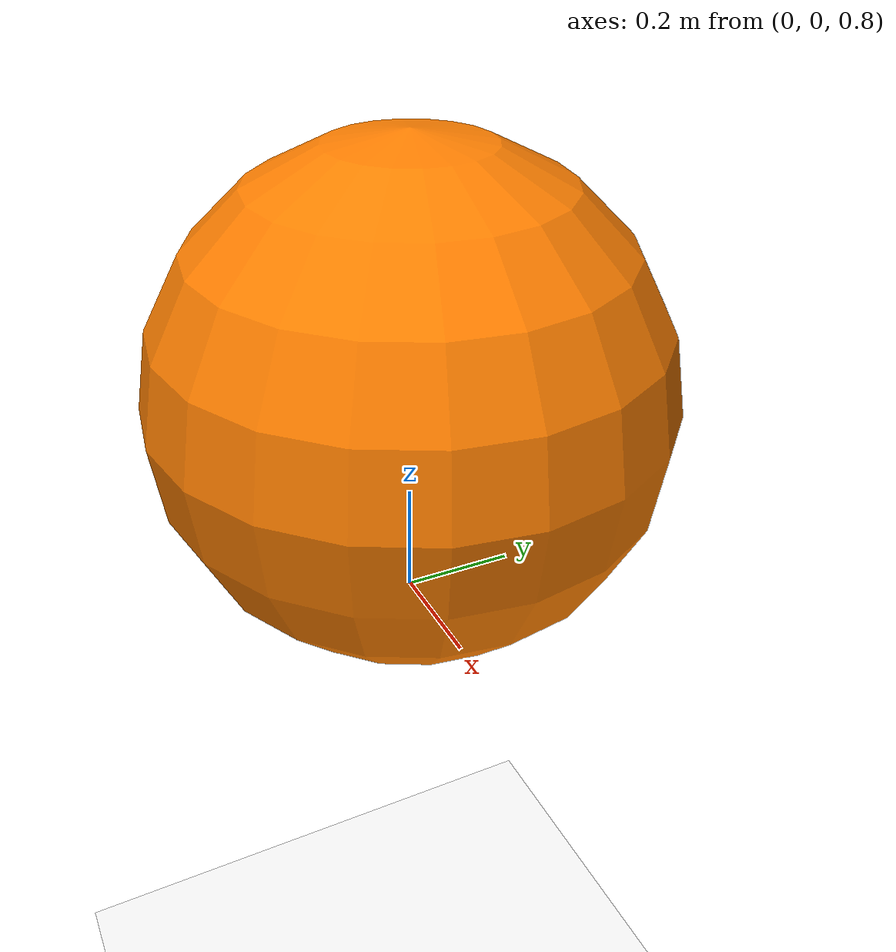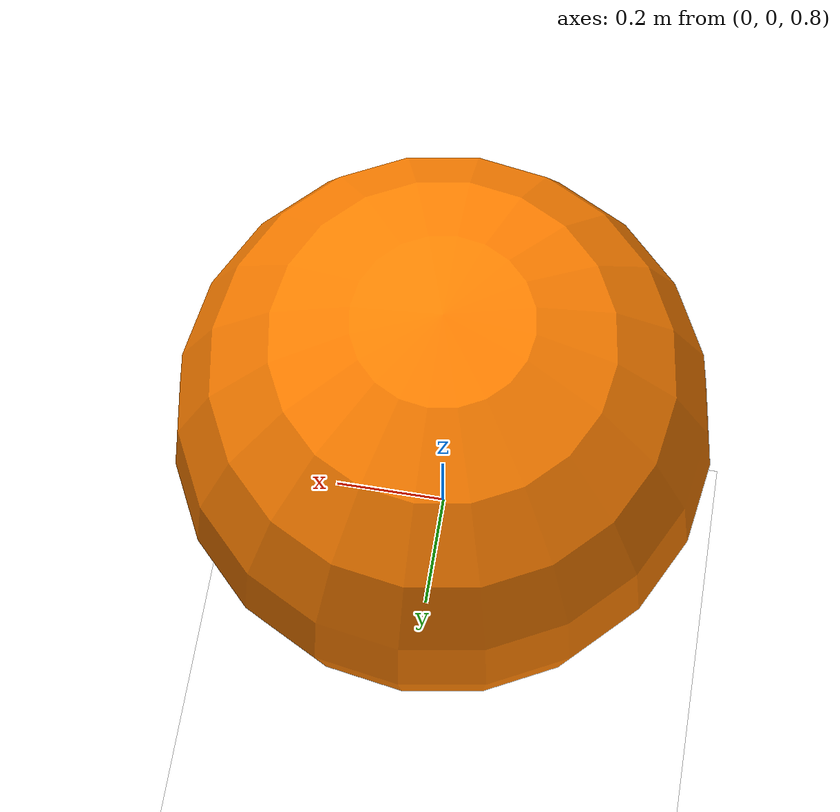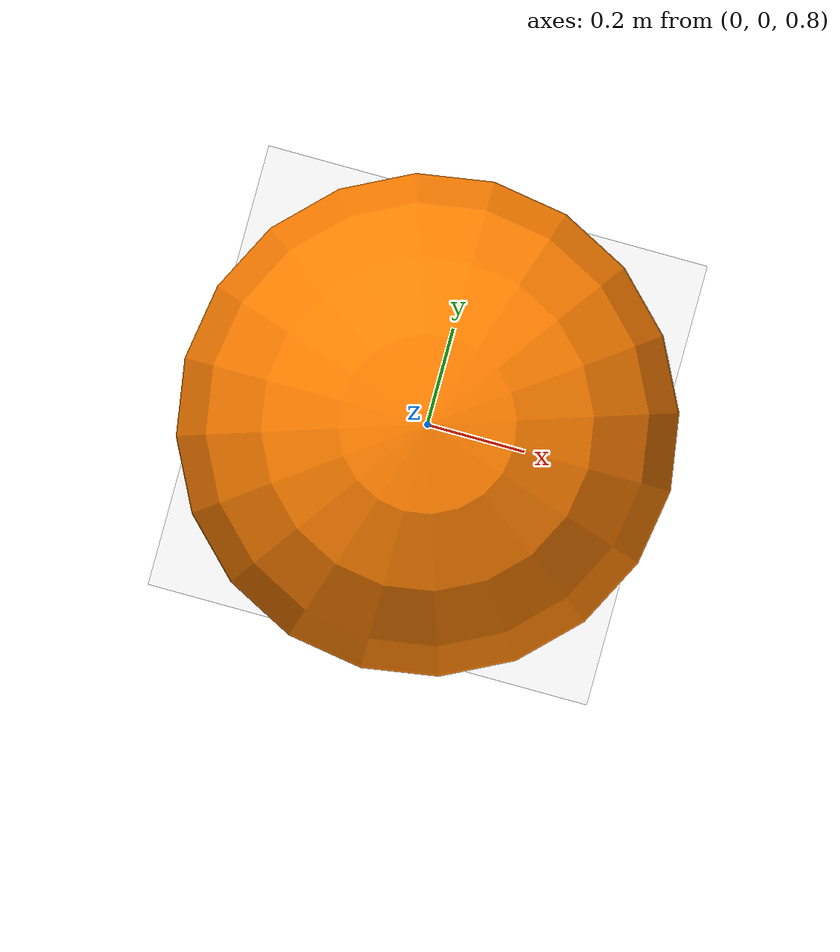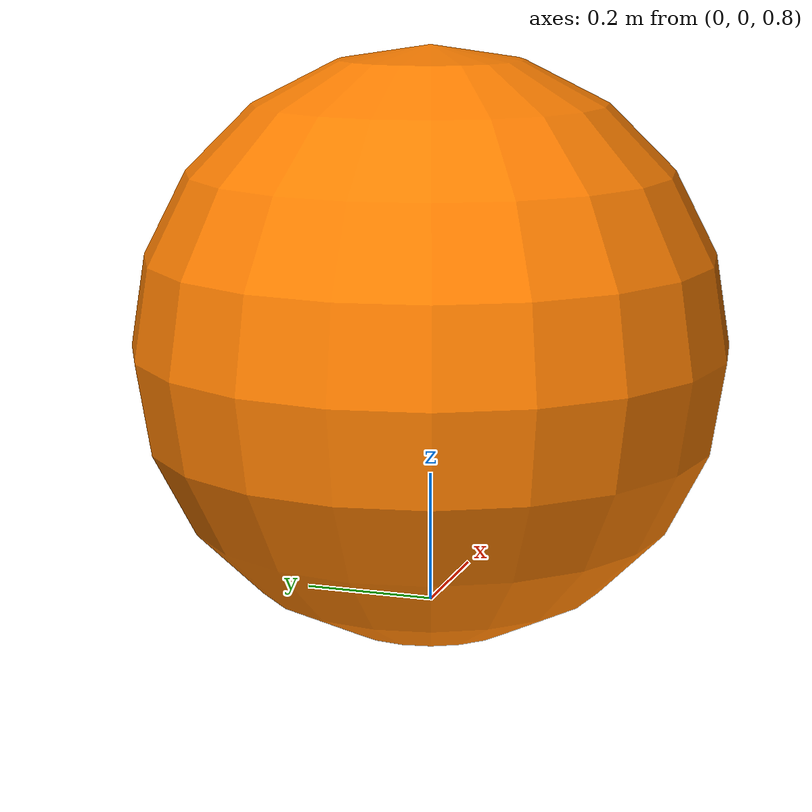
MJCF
<mujoco model="scene5_rapid_motion">
  <compiler angle="radian"/>

  <option timestep="0.002" gravity="0 0 0">
    <flag contact="disable"/>
  </option>

  <visual>
    <global offwidth="800" offheight="800"/>
    <quality shadowsize="4096"/>
  </visual>

  <asset>
    <texture name="white_skybox"
             type="skybox"
             builtin="flat"
             width="512"
             height="512"
             rgb1="1 1 1"
             rgb2="1 1 1"/>
    <material name="white_floor" rgba="1 1 1 1" reflectance="0"/>
  </asset>

  <worldbody>
    <light directional="true" pos="0 0 5" dir="0 0 -1" diffuse="0.8 0.8 0.8"/>
    <light directional="true" pos="2 2 5" dir="-0.5 -0.5 -1" diffuse="0.4 0.4 0.4"/>

    <geom name="floor" type="plane" size="5 5 0.1" material="white_floor" pos="0 0 -0.5"/>

    <body name="target" pos="0 0 1.2">
      <site name="target_site" size="0.01" rgba="1 0 0 0"/>
    </body>

    <!-- Single sphere for zigzag motion -->
    <body name="sphere" pos="0 0 1.2">
      <freejoint/>
      <geom name="sphere_geom" type="sphere" size="0.45" rgba="1.0 0.5 0.0 1" mass="1"/>
    </body>

    <!-- Scaled 1.5x for 800x800 square resolution — sphere zigzags across ±2m in X and Y -->
    <camera name="cam0" pos="6.0 0 3.0" mode="targetbody" target="target" fovy="50"/>
    <camera name="cam1" pos="0 6.0 3.0" mode="targetbody" target="target" fovy="50"/>
    <camera name="cam2" pos="-6.0 0 3.0" mode="targetbody" target="target" fovy="50"/>
    <camera name="cam3" pos="0 -6.0 3.0" mode="targetbody" target="target" fovy="50"/>
    <camera name="cam4" pos="4.5 4.5 4.5" mode="targetbody" target="target" fovy="50"/>
    <camera name="cam5" pos="-4.5 4.5 4.5" mode="targetbody" target="target" fovy="50"/>
    <camera name="cam6" pos="4.5 -4.5 4.5" mode="targetbody" target="target" fovy="50"/>
    <camera name="cam7" pos="-4.5 -4.5 4.5" mode="targetbody" target="target" fovy="50"/>
    <camera name="cam8" pos="4.5 0 1.2" mode="targetbody" target="target" fovy="55"/>
    <camera name="cam9" pos="-4.5 0 1.2" mode="targetbody" target="target" fovy="55"/>
    <camera name="cam10" pos="0 0 7.5" mode="targetbody" target="target" fovy="45"/>
    <camera name="cam11" pos="3.0 3.0 6.0" mode="targetbody" target="target" fovy="45"/>
  </worldbody>
</mujoco>
